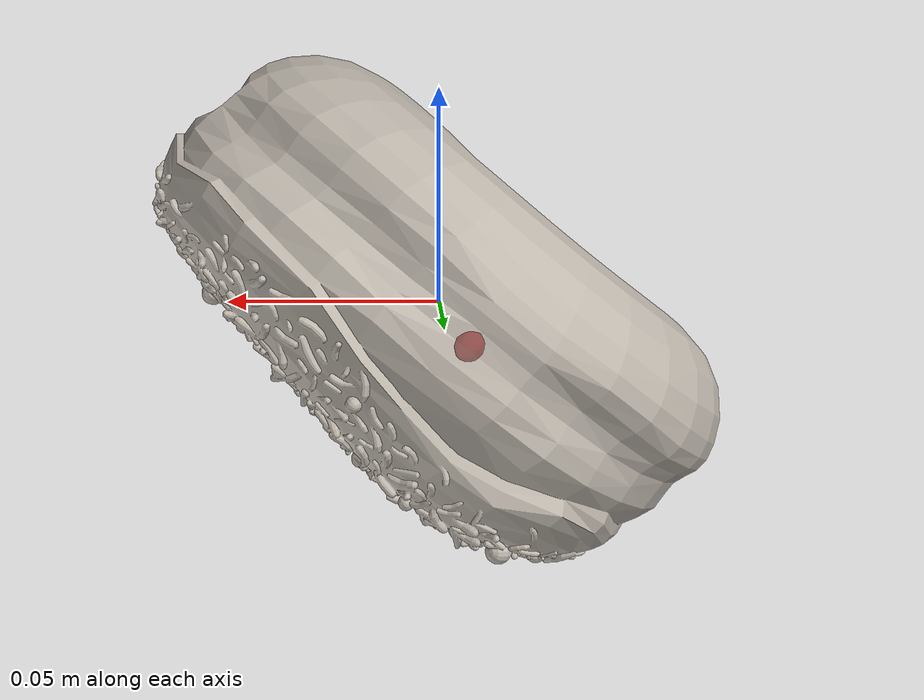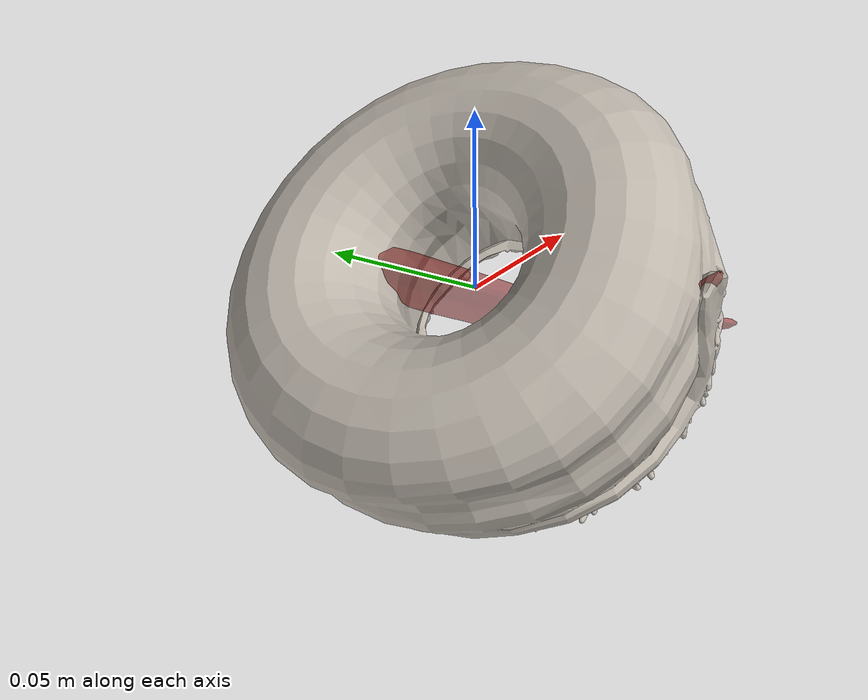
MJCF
<mujoco model="more_fish_13">
  <asset>
    <mesh file="visual/model_normalized_0.obj" name="model_normalized_0_vis" scale="0.14000 0.14000 0.14000" refquat="0.27059805007309823 -0.6532814824381882 -0.6532814824381877 -0.27059805007309845" />
    <texture type="2d" name="image0" file="visual/image0.png" />
    <material name="SARDINA" texture="image0" specular="0.5" shininess="0.359999993" />
    <mesh file="collision/collision_mesh_collision_0.obj" name="fish_collision_mesh_0" scale="0.14000 0.14000 0.14000" refquat="0.27059805007309823 -0.6532814824381882 -0.6532814824381877 -0.27059805007309845" />
    <mesh file="collision/collision_mesh_collision_1.obj" name="fish_collision_mesh_1" scale="0.14000 0.14000 0.14000" refquat="0.27059805007309823 -0.6532814824381882 -0.6532814824381877 -0.27059805007309845" />
    <mesh file="collision/collision_mesh_collision_2.obj" name="fish_collision_mesh_2" scale="0.14000 0.14000 0.14000" refquat="0.27059805007309823 -0.6532814824381882 -0.6532814824381877 -0.27059805007309845" />
    <mesh file="collision/collision_mesh_collision_3.obj" name="fish_collision_mesh_3" scale="0.14000 0.14000 0.14000" refquat="0.27059805007309823 -0.6532814824381882 -0.6532814824381877 -0.27059805007309845" />
    <mesh file="collision/collision_mesh_collision_4.obj" name="fish_collision_mesh_4" scale="0.14000 0.14000 0.14000" refquat="0.27059805007309823 -0.6532814824381882 -0.6532814824381877 -0.27059805007309845" />
    <mesh file="collision/collision_mesh_collision_5.obj" name="fish_collision_mesh_5" scale="0.14000 0.14000 0.14000" refquat="0.27059805007309823 -0.6532814824381882 -0.6532814824381877 -0.27059805007309845" />
    <mesh file="collision/collision_mesh_collision_6.obj" name="fish_collision_mesh_6" scale="0.14000 0.14000 0.14000" refquat="0.27059805007309823 -0.6532814824381882 -0.6532814824381877 -0.27059805007309845" />
    <mesh file="collision/collision_mesh_collision_7.obj" name="fish_collision_mesh_7" scale="0.14000 0.14000 0.14000" refquat="0.27059805007309823 -0.6532814824381882 -0.6532814824381877 -0.27059805007309845" />
    <mesh file="collision/collision_mesh_collision_8.obj" name="fish_collision_mesh_8" scale="0.14000 0.14000 0.14000" refquat="0.27059805007309823 -0.6532814824381882 -0.6532814824381877 -0.27059805007309845" />
    </asset>
  <default>
    <default class="region">
      <geom group="1" conaffinity="0" contype="0" rgba="0 1 0 0" />
      </default>
    <default class="collision">
      <geom group="0" rgba="0.5 0 0 0.5" density="1000.0" />
      </default>
    </default>
  <worldbody>
    <body>
      <body name="object">
        <geom solimp="0.998 0.998 0.001" solref="0.001 1" density="100" friction="0.95 0.3 0.1" type="mesh" mesh="model_normalized_0_vis" conaffinity="0" contype="0" group="1" material="SARDINA" />
        <geom class="region" name="reg_bbox" type="box" pos="0.00102 -0.00034 0.00490" size="0.01948 0.06918 0.01535" />
        <geom mesh="fish_collision_mesh_0" type="mesh" class="collision" />
        <geom mesh="fish_collision_mesh_1" type="mesh" class="collision" />
        <geom mesh="fish_collision_mesh_2" type="mesh" class="collision" />
        <geom mesh="fish_collision_mesh_3" type="mesh" class="collision" />
        <geom mesh="fish_collision_mesh_4" type="mesh" class="collision" />
        <geom mesh="fish_collision_mesh_5" type="mesh" class="collision" />
        <geom mesh="fish_collision_mesh_6" type="mesh" class="collision" />
        <geom mesh="fish_collision_mesh_7" type="mesh" class="collision" />
        <geom mesh="fish_collision_mesh_8" type="mesh" class="collision" />
        </body>
      </body>
    </worldbody>
  </mujoco>
